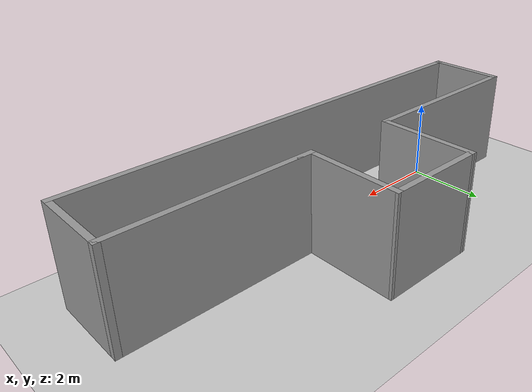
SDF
<sdf version="1.6">
 <world name="default">
  <light name="sun" type="directional">
   <pose>0 0 10 0 -0 0</pose>
   <diffuse>0.8 0.8 0.8 1</diffuse>
   <specular>0.2 0.2 0.2 1</specular>
   <attenuation>
    <range>1000</range>
    <constant>0.9</constant>
    <linear>0.01</linear>
    <quadratic>0.001</quadratic>
   </attenuation>
   <direction>-0.5 0.1 -0.9</direction>
  </light>
  <model name="ground_plane">
   <static>1</static>
   <link name="link">
    <collision name="collision">
     <geometry><plane><normal>0 0 1</normal><size>100 100</size></plane></geometry>
     <surface><friction><ode><mu>100</mu><mu2>50</mu2></ode></friction></surface>
    </collision>
    <visual name="visual">
     <cast_shadows>0</cast_shadows>
     <geometry><plane><normal>0 0 1</normal><size>100 100</size></plane></geometry>
     <material>
      <script><uri>file://media/materials/scripts/gazebo.material</uri><name>Gazebo/Grey</name></script>
     </material>
    </visual>
   </link>
  </model>
  <gravity>0 0 -9.8</gravity>
  <magnetic_field>6e-06 2.3e-05 -4.2e-05</magnetic_field>
  <atmosphere type="adiabatic"/>
  <physics name="default_physics" default="0" type="ode">
   <max_step_size>0.001</max_step_size>
   <real_time_factor>1</real_time_factor>
   <real_time_update_rate>1000</real_time_update_rate>
  </physics>
  <scene><ambient>0.4 0.4 0.4 1</ambient><background>0.7 0.7 0.7 1</background><shadows>1</shadows></scene>
  <audio><device>default</device></audio>
  <spherical_coordinates>
   <surface_model>EARTH_WGS84</surface_model>
   <latitude_deg>0</latitude_deg>
   <longitude_deg>0</longitude_deg>
   <elevation>0</elevation>
   <heading_deg>0</heading_deg>
  </spherical_coordinates>
  <model name="my_building_test">
   <pose>3.745 1.01516 0 0 -0 0</pose>
   <link name="Wall_0">
    <collision name="Wall_0_Collision">
     <geometry><box><size>12 0.15 2.5</size></box></geometry>
     <pose>0 0 1.25 0 -0 0</pose>
    </collision>
    <visual name="Wall_0_Visual">
     <pose>0 0 1.25 0 -0 0</pose>
     <geometry><box><size>12 0.15 2.5</size></box></geometry>
     <material>
      <script><uri>file://media/materials/scripts/gazebo.material</uri><name>Gazebo/Grey</name></script>
      <ambient>1 1 1 1</ambient>
     </material>
     <meta><layer>0</layer></meta>
    </visual>
    <pose>0 -2.10516 0 0 -0 3.14159</pose>
   </link>
   <link name="Wall_1">
    <collision name="Wall_1_Collision">
     <geometry><box><size>2 0.15 2.5</size></box></geometry>
     <pose>0 0 1.25 0 -0 0</pose>
    </collision>
    <visual name="Wall_1_Visual">
     <pose>0 0 1.25 0 -0 0</pose>
     <geometry><box><size>2 0.15 2.5</size></box></geometry>
     <material>
      <script><uri>file://media/materials/scripts/gazebo.material</uri><name>Gazebo/Grey</name></script>
      <ambient>1 1 1 1</ambient>
     </material>
     <meta><layer>0</layer></meta>
    </visual>
    <pose>-5.925 -1.17016 0 0 -0 1.5708</pose>
   </link>
   <link name="Wall_11">
    <collision name="Wall_11_Collision">
     <geometry><box><size>2.5 0.15 2.5</size></box></geometry>
     <pose>0 0 1.25 0 -0 0</pose>
    </collision>
    <visual name="Wall_11_Visual">
     <pose>0 0 1.25 0 -0 0</pose>
     <geometry><box><size>2.5 0.15 2.5</size></box></geometry>
     <material>
      <script><uri>file://media/materials/scripts/gazebo.material</uri><name>Gazebo/Grey</name></script>
      <ambient>1 1 1 1</ambient>
     </material>
     <meta><layer>0</layer></meta>
    </visual>
    <pose>-1.325 0.929844 0 0 -0 1.5708</pose>
   </link>
   <link name="Wall_14">
    <collision name="Wall_14_Collision">
     <geometry><box><size>2 0.15 2.5</size></box></geometry>
     <pose>0 0 1.25 0 -0 0</pose>
    </collision>
    <visual name="Wall_14_Visual">
     <pose>0 0 1.25 0 -0 0</pose>
     <geometry><box><size>2 0.15 2.5</size></box></geometry>
     <material>
      <script><uri>file://media/materials/scripts/gazebo.material</uri><name>Gazebo/Grey</name></script>
      <ambient>1 1 1 1</ambient>
     </material>
     <meta><layer>0</layer></meta>
    </visual>
    <pose>5.925 -1.18016 0 0 -0 1.5708</pose>
   </link>
   <link name="Wall_15">
    <collision name="Wall_15_Collision">
     <geometry><box><size>5 0.15 2.5</size></box></geometry>
     <pose>0 0 1.25 0 -0 0</pose>
    </collision>
    <visual name="Wall_15_Visual">
     <pose>0 0 1.25 0 -0 0</pose>
     <geometry><box><size>5 0.15 2.5</size></box></geometry>
     <material>
      <script><uri>file://media/materials/scripts/gazebo.material</uri><name>Gazebo/Grey</name></script>
      <ambient>0 0 0 1</ambient>
     </material>
     <meta><layer>0</layer></meta>
    </visual>
    <pose>3.5 -0.255156 0 0 -0 3.14159</pose>
   </link>
   <link name="Wall_16">
    <collision name="Wall_16_Collision">
     <geometry><box><size>2.5 0.15 2.5</size></box></geometry>
     <pose>0 0 1.25 0 -0 0</pose>
    </collision>
    <visual name="Wall_16_Visual">
     <pose>0 0 1.25 0 -0 0</pose>
     <geometry><box><size>2.5 0.15 2.5</size></box></geometry>
     <material>
      <script><uri>file://media/materials/scripts/gazebo.material</uri><name>Gazebo/Grey</name></script>
      <ambient>1 1 1 1</ambient>
     </material>
     <meta><layer>0</layer></meta>
    </visual>
    <pose>1.075 0.919844 0 0 -0 1.5708</pose>
   </link>
   <link name="Wall_17">
    <collision name="Wall_17_Collision">
     <geometry><box><size>2.55002 0.15 2.5</size></box></geometry>
     <pose>0 0 1.25 0 -0 0</pose>
    </collision>
    <visual name="Wall_17_Visual">
     <pose>0 0 1.25 0 -0 0</pose>
     <geometry><box><size>2.55002 0.15 2.5</size></box></geometry>
     <material>
      <script><uri>file://media/materials/scripts/gazebo.material</uri><name>Gazebo/Grey</name></script>
      <ambient>1 1 1 1</ambient>
     </material>
     <meta><layer>0</layer></meta>
    </visual>
    <pose>-0.125 2.09984 0 0 -0 3.13743</pose>
   </link>
   <link name="Wall_3">
    <collision name="Wall_3_Collision">
     <geometry><box><size>4.75 0.15 2.5</size></box></geometry>
     <pose>0 0 1.25 0 -0 0</pose>
    </collision>
    <visual name="Wall_3_Visual">
     <pose>0 0 1.25 0 -0 0</pose>
     <geometry><box><size>4.75 0.15 2.5</size></box></geometry>
     <material>
      <script><uri>file://media/materials/scripts/gazebo.material</uri><name>Gazebo/Grey</name></script>
      <ambient>1 1 1 1</ambient>
     </material>
     <meta><layer>0</layer></meta>
    </visual>
    <pose>-3.625 -0.245156 0 0 -0 0</pose>
   </link>
   <link name="Wall_6">
    <collision name="Wall_6_Collision">
     <geometry><box><size>0.15 0.15 2.5</size></box></geometry>
     <pose>0 0 1.25 0 -0 0</pose>
    </collision>
    <visual name="Wall_6_Visual">
     <pose>0 0 1.25 0 -0 0</pose>
     <geometry><box><size>0.15 0.15 2.5</size></box></geometry>
     <material>
      <script><uri>file://media/materials/scripts/gazebo.material</uri><name>Gazebo/Grey</name></script>
      <ambient>1 1 1 1</ambient>
     </material>
     <meta><layer>0</layer></meta>
    </visual>
    <pose>1.425 -0.255156 0 0 -0 0</pose>
   </link>
   <static>1</static>
  </model>
 </world>
</sdf>
